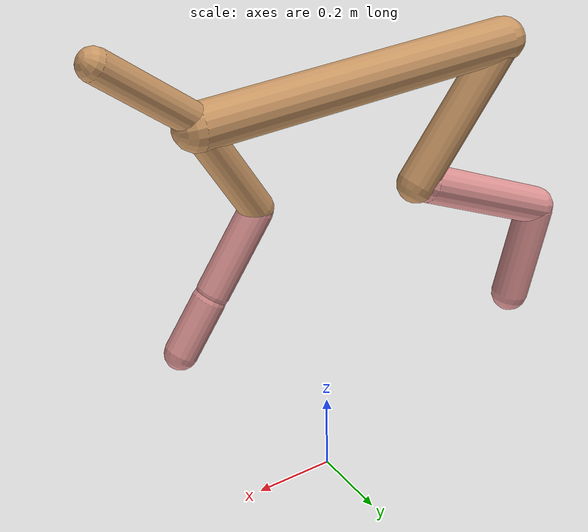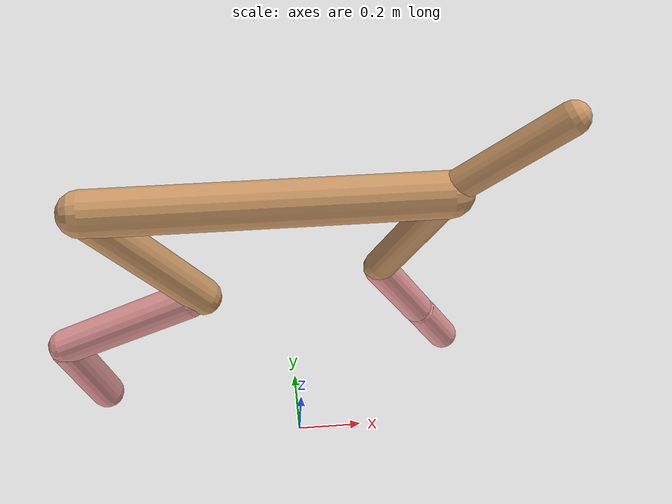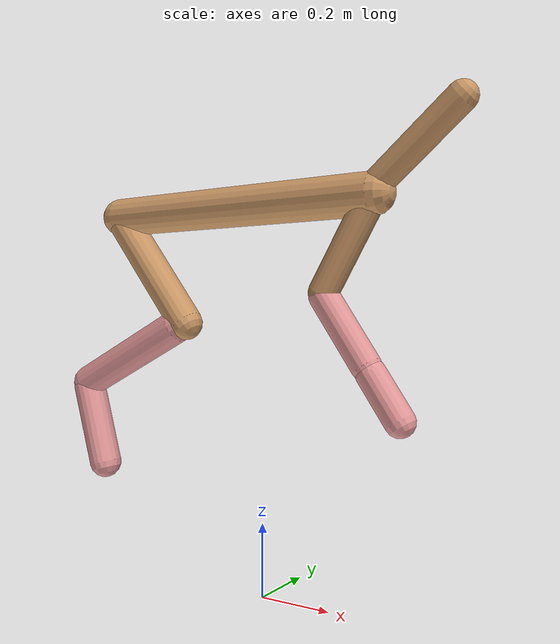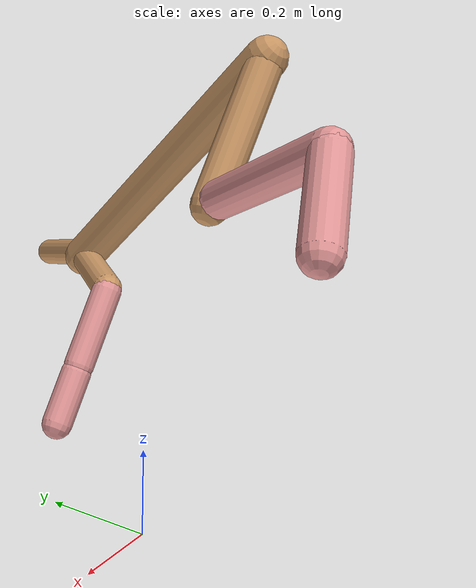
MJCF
<mujoco model="cheetah">
  <compiler angle="radian" coordinate="local" inertiafromgeom="true" settotalmass="14" />
  <default>
    <joint armature=".1" damping=".01" limited="true" solimplimit="0 .8 .03" solreflimit=".02 1" stiffness="8" />
    <geom conaffinity="0" condim="3" contype="1" friction="0.8 .1 .1" rgba="0.8 0.6 .4 1" solimp="0.0 0.8 0.01" solref="0.02 1" />
    <motor ctrllimited="true" ctrlrange="-1 1" />
  </default>
  <size nstack="300000" nuser_geom="1" />
  <option gravity="0 0 -9.81" timestep="0.01" />
  <worldbody>
    <body name="torso" pos="0.0 0.0 1.0475952973592446">
      <joint armature="0" axis="1 0 0" damping="0" limited="false" name="ignorex" pos="0 0 0" stiffness="0" type="slide" />
      <joint armature="0" axis="0 0 1" damping="0" limited="false" name="ignorez" pos="0 0 0" stiffness="0" type="slide" />
      <joint armature="0" axis="0 1 0" damping="0" limited="false" name="ignorey" pos="0 0 0" stiffness="0" type="hinge" />
      <geom fromto="-0.5 0.0 0.0 0.3161464906121797 0.0 0.0" name="torso" size="0.05434596885967612" type="capsule" />
      <geom axisangle="0 1 0 .87" name="head" pos="0.4161464906121797 0.0 0.1" size="0.037637075989829565 0.15" type="capsule" />

      <body name="bthigh" pos="-.5 0 0">
        <joint axis="0 1 0" damping="6" name="bthigh" pos="0 0 0" range="-.52 1.05" stiffness="240" type="hinge" />
        <geom axisangle="0 1 0 -3.8" name="bthigh" pos="0.12604256442118528 0.0 -0.16385533374754085" size="0.04760622785463 0.18771298145516144" type="capsule" />
        <body name="bshin" pos="0.21208512884237057 0.0 -0.3177106674950817">
          <joint axis="0 1 0" damping="4.5" name="bshin" pos="0 0 0" range="-.785 .785" stiffness="180" type="hinge" />
          <geom axisangle="0 1 0 -2.03" name="bshin" pos="-0.1795210193332809 0.0 -0.08976050966664045" rgba="0.9 0.6 0.6 1" size="0.04760622785463 0.19418584288464977" type="capsule" />
          <body name="bfoot" pos="-0.3590420386665618 0.0 -0.1795210193332809">
            <joint axis="0 1 0" damping="3" name="bfoot" pos="0 0 0" range="-.4 .785" stiffness="120" type="hinge" />
            <geom axisangle="0 1 0 -.27" name="bfoot" pos="0.0381814960193021 0.0 -0.12345350379574346" rgba="0.9 0.6 0.6 1" size="0.04760622785463 0.12168979487438053" type="capsule" />
            <inertial mass="10" />
          </body>
        </body>
      </body>
      <body name="fthigh" pos="0.3161464906121797 0.0 0.0">
        <joint axis="0 1 0" damping="4.5" name="fthigh" pos="0 0 0" range="-1.5 0.8" stiffness="180" type="hinge" />
        <geom axisangle="0 1 0 .52" name="fthigh" pos="-0.06982847426081273 0.0 -0.11970595587567896" size="0.03922287473719253 0.13265958403937028" type="capsule" />
        <body name="fshin" pos="-0.13965694852162547 0.0 -0.23941191175135793">
          <joint axis="0 1 0" damping="3" name="fshin" pos="0 0 0" range="-1.2 1.1" stiffness="120" type="hinge" />
          <geom axisangle="0 1 0 -.6" name="fshin" pos="0.06484115116610063 0.0 -0.08978005546075472" rgba="0.9 0.6 0.6 1" size="0.03922287473719253 0.10572869103889661" type="capsule" />
          <body name="ffoot" pos="0.12968230233220127 0.0 -0.17956011092150945">
            <joint axis="0 1 0" damping="1.5" name="ffoot" pos="0 0 0" range="-3.1 -0.3" stiffness="60" type="hinge" />
            <geom axisangle="0 1 0 -.6" name="ffoot" pos="0.04490311446583431 0.0 -0.06984928916907561" rgba="0.9 0.6 0.6 1" size="0.03922287473719253 0.06982083370493174" type="capsule" />
            <inertial mass="10" />
          </body>
        </body>
      </body>
    </body>
  </worldbody>
  <actuator>
    <motor gear="120" joint="bthigh" name="bthigh" />
    <motor gear="90" joint="bshin" name="bshin" />
    <motor gear="60" joint="bfoot" name="bfoot" />
    <motor gear="120" joint="fthigh" name="fthigh" />
    <motor gear="60" joint="fshin" name="fshin" />
    <motor gear="30" joint="ffoot" name="ffoot" />
  </actuator>
</mujoco>
